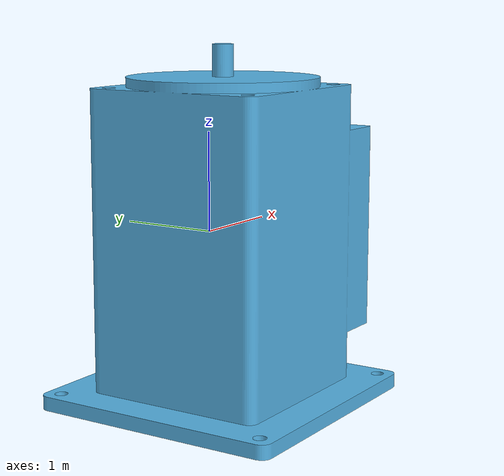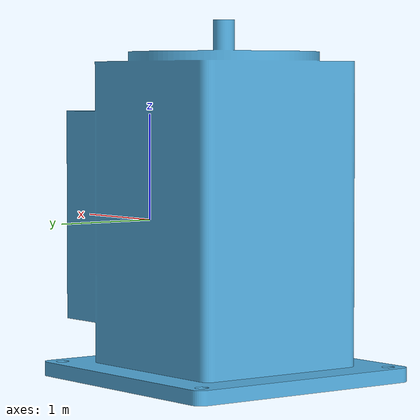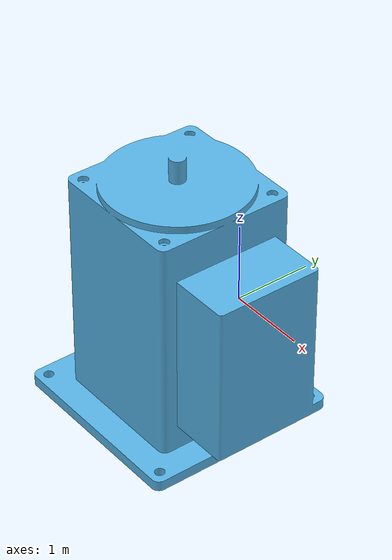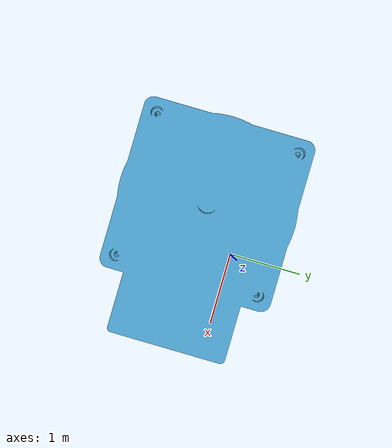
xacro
<?xml version="1.0"?>
<robot xmlns:xacro="http://www.ros.org/wiki/xacro" name="scara">
<link name="world"/>
<link name="base_link">
<visual>
<origin rpy="0 0 0" xyz="-0.5 -0.5 0"/>
<geometry>
<mesh filename="package://scara_description/meshes/bs.stl" scale="0.01 0.01
0.01"/>
</geometry>
</visual>
</link>
<!-- Joints -->
<joint name="virtual_joint" type="fixed">
<parent link="world"/>
<child link="base_link"/>
<origin xyz="0 0 0" rpy="0 0 0"/>
</joint>
</robot>
